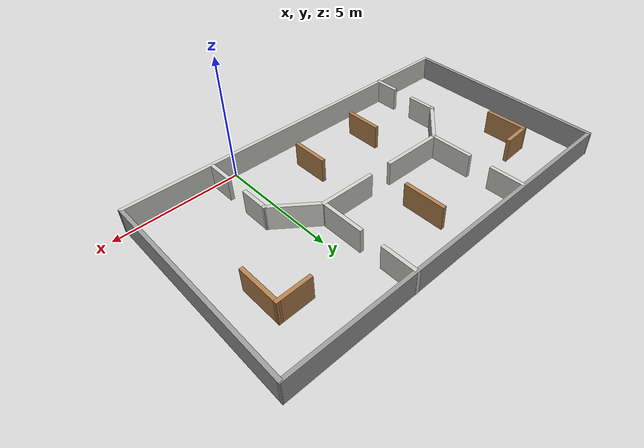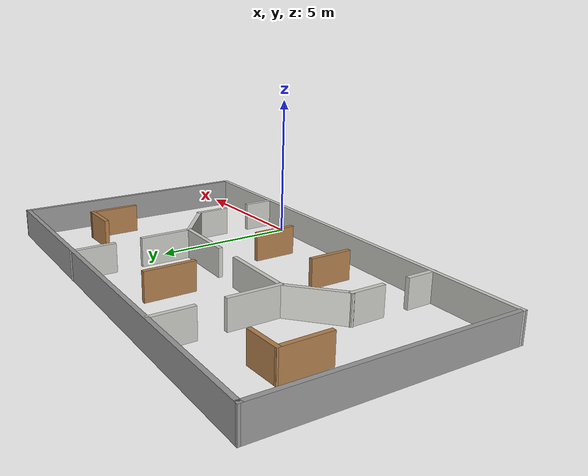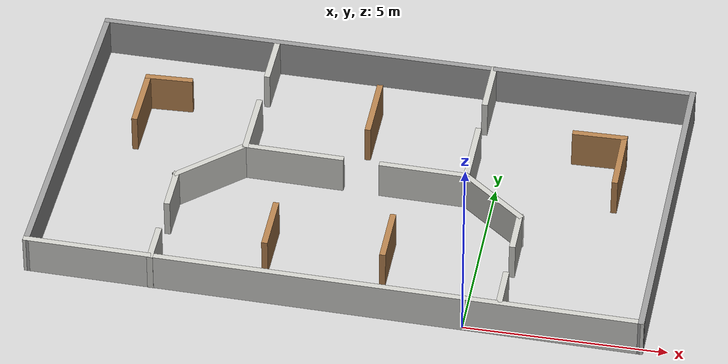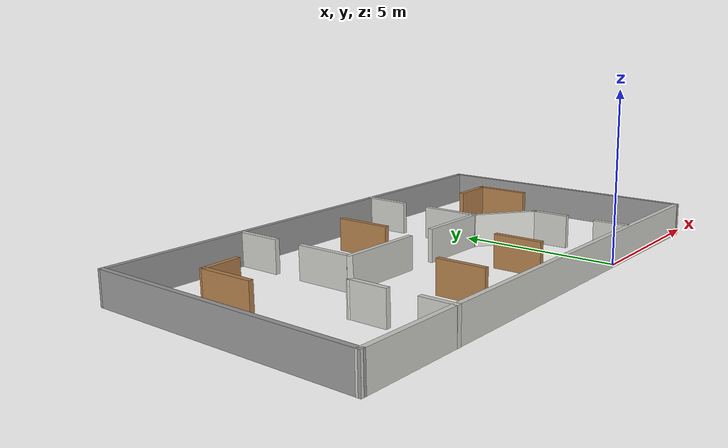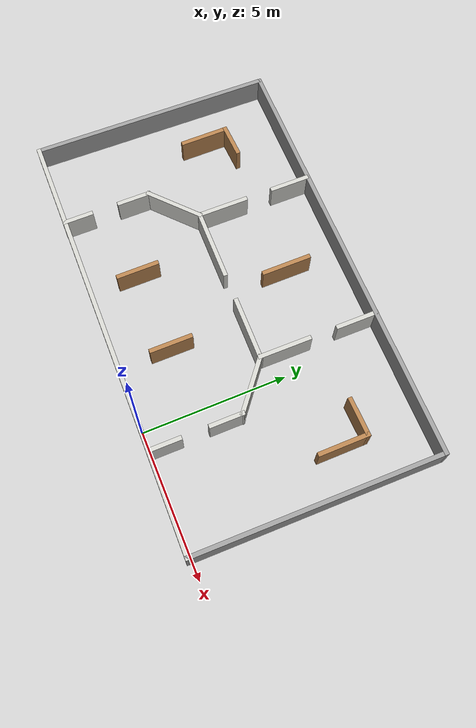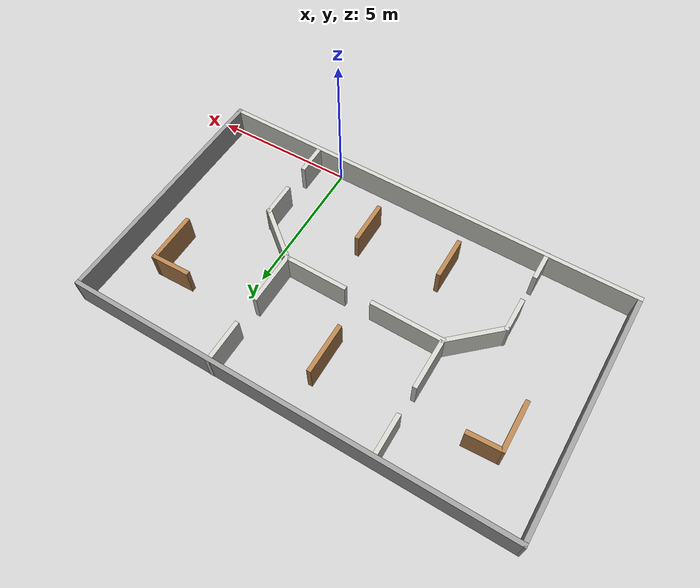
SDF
<?xml version='1.0'?>
<sdf version='1.7'>
  <model name='m2'>
    <pose>-3.18872 4.25007 0 0 -0 0</pose>
    <link name='Wall_0'>
      <collision name='Wall_0_Collision'>
        <geometry>
          <box>
            <size>15.3022 0.15 1</size>
          </box>
        </geometry>
        <pose>0 0 0.5 0 -0 0</pose>
      </collision>
      <visual name='Wall_0_Visual'>
        <pose>0 0 0.5 0 -0 0</pose>
        <geometry>
          <box>
            <size>15.3022 0.15 1</size>
          </box>
        </geometry>
        <material>
          <script>
            <uri>file://media/materials/scripts/gazebo.material</uri>
            <name>Gazebo/CeilingTiled</name>
          </script>
          <ambient>0.180392 0.203922 0.211765 1</ambient>
        </material>
        <meta>
          <layer>0</layer>
        </meta>
      </visual>
      <pose>-0.044283 -4.22507 0 0 -0 -0.01716</pose>
    </link>
    <link name='Wall_1'>
      <collision name='Wall_1_Collision'>
        <geometry>
          <box>
            <size>8.67935 0.15 1</size>
          </box>
        </geometry>
        <pose>0 0 0.5 0 -0 0</pose>
      </collision>
      <visual name='Wall_1_Visual'>
        <pose>0 0 0.5 0 -0 0</pose>
        <geometry>
          <box>
            <size>8.67935 0.15 1</size>
          </box>
        </geometry>
        <material>
          <script>
            <uri>file://media/materials/scripts/gazebo.material</uri>
            <name>Gazebo/Grey</name>
          </script>
          <ambient>0.180392 0.203922 0.211765 1</ambient>
        </material>
        <meta>
          <layer>0</layer>
        </meta>
      </visual>
      <pose>7.57522 -0.090566 0 0 -0 1.56036</pose>
    </link>
    <link name='Wall_10'>
      <collision name='Wall_10_Collision'>
        <geometry>
          <box>
            <size>2.12763 0.15 1</size>
          </box>
        </geometry>
        <pose>0 0 0.5 0 -0 0</pose>
      </collision>
      <visual name='Wall_10_Visual'>
        <pose>0 0 0.5 0 -0 0</pose>
        <geometry>
          <box>
            <size>2.12763 0.15 1</size>
          </box>
        </geometry>
        <material>
          <script>
            <uri>file://media/materials/scripts/gazebo.material</uri>
            <name>Gazebo/CeilingTiled</name>
          </script>
          <ambient>0.756863 0.490196 0.0666667 1</ambient>
        </material>
        <meta>
          <layer>0</layer>
        </meta>
      </visual>
      <pose>3.30422 -0.512566 0 0 -0 -0.685089</pose>
    </link>
    <link name='Wall_11'>
      <pose>4.06972 -2.66807 0 0 -0 -1.5708</pose>
      <visual name='Wall_11_Visual_0'>
        <pose>-0.99366 0 0.5 0 -0 0</pose>
        <geometry>
          <box>
            <size>1.22281 0.15 1</size>
          </box>
        </geometry>
        <material>
          <script>
            <uri>file://media/materials/scripts/gazebo.material</uri>
            <name>Gazebo/CeilingTiled</name>
          </script>
          <ambient>0.756863 0.490196 0.0666667 1</ambient>
        </material>
        <meta>
          <layer>0</layer>
        </meta>
      </visual>
      <collision name='Wall_11_Collision_0'>
        <geometry>
          <box>
            <size>1.22281 0.15 1</size>
          </box>
        </geometry>
        <pose>-0.99366 0 0.5 0 -0 0</pose>
      </collision>
      <visual name='Wall_11_Visual_1'>
        <pose>1.0614 0 0.5 0 -0 0</pose>
        <geometry>
          <box>
            <size>1.08732 0.15 1</size>
          </box>
        </geometry>
        <material>
          <script>
            <uri>file://media/materials/scripts/gazebo.material</uri>
            <name>Gazebo/CeilingTiled</name>
          </script>
          <ambient>0.756863 0.490196 0.0666667 1</ambient>
        </material>
        <meta>
          <layer>0</layer>
        </meta>
      </visual>
      <collision name='Wall_11_Collision_1'>
        <geometry>
          <box>
            <size>1.08732 0.15 1</size>
          </box>
        </geometry>
        <pose>1.0614 0 0.5 0 -0 0</pose>
      </collision>
    </link>
    <link name='Wall_13'>
      <collision name='Wall_13_Collision'>
        <geometry>
          <box>
            <size>2.13524 0.15 1</size>
          </box>
        </geometry>
        <pose>0 0 0.5 0 -0 0</pose>
      </collision>
      <visual name='Wall_13_Visual'>
        <pose>0 0 0.5 0 -0 0</pose>
        <geometry>
          <box>
            <size>2.13524 0.15 1</size>
          </box>
        </geometry>
        <material>
          <script>
            <uri>file://media/materials/scripts/gazebo.material</uri>
            <name>Gazebo/CeilingTiled</name>
          </script>
          <ambient>0.756863 0.490196 0.0666667 1</ambient>
        </material>
        <meta>
          <layer>0</layer>
        </meta>
      </visual>
      <pose>-3.77628 -0.434566 0 0 -0 -2.40429</pose>
    </link>
    <link name='Wall_18'>
      <pose>-4.51628 -2.62957 0 0 -0 1.56752</pose>
      <visual name='Wall_18_Visual_0'>
        <pose>-1.06039 0 0.5 0 -0 0</pose>
        <geometry>
          <box>
            <size>1.08436 0.15 1</size>
          </box>
        </geometry>
        <material>
          <script>
            <uri>file://media/materials/scripts/gazebo.material</uri>
            <name>Gazebo/CeilingTiled</name>
          </script>
          <ambient>0.756863 0.490196 0.0666667 1</ambient>
        </material>
        <meta>
          <layer>0</layer>
        </meta>
      </visual>
      <collision name='Wall_18_Collision_0'>
        <geometry>
          <box>
            <size>1.08436 0.15 1</size>
          </box>
        </geometry>
        <pose>-1.06039 0 0.5 0 -0 0</pose>
      </collision>
      <visual name='Wall_18_Visual_1'>
        <pose>0.992182 0 0.5 0 -0 0</pose>
        <geometry>
          <box>
            <size>1.22077 0.15 1</size>
          </box>
        </geometry>
        <material>
          <script>
            <uri>file://media/materials/scripts/gazebo.material</uri>
            <name>Gazebo/CeilingTiled</name>
          </script>
          <ambient>0.756863 0.490196 0.0666667 1</ambient>
        </material>
        <meta>
          <layer>0</layer>
        </meta>
      </visual>
      <collision name='Wall_18_Collision_1'>
        <geometry>
          <box>
            <size>1.22077 0.15 1</size>
          </box>
        </geometry>
        <pose>0.992182 0 0.5 0 -0 0</pose>
      </collision>
    </link>
    <link name='Wall_2'>
      <collision name='Wall_2_Collision'>
        <geometry>
          <box>
            <size>15.2302 0.15 1</size>
          </box>
        </geometry>
        <pose>0 0 0.5 0 -0 0</pose>
      </collision>
      <visual name='Wall_2_Visual'>
        <pose>0 0 0.5 0 -0 0</pose>
        <geometry>
          <box>
            <size>15.2302 0.15 1</size>
          </box>
        </geometry>
        <material>
          <script>
            <uri>file://media/materials/scripts/gazebo.material</uri>
            <name>Gazebo/Grey</name>
          </script>
          <ambient>0.180392 0.203922 0.211765 1</ambient>
        </material>
        <meta>
          <layer>0</layer>
        </meta>
      </visual>
      <pose>0.080217 4.26443 0 0 -0 3.12959</pose>
    </link>
    <link name='Wall_20'>
      <collision name='Wall_20_Collision'>
        <geometry>
          <box>
            <size>1.5 0.15 1</size>
          </box>
        </geometry>
        <pose>0 0 0.5 0 -0 0</pose>
      </collision>
      <visual name='Wall_20_Visual'>
        <pose>0 0 0.5 0 -0 0</pose>
        <geometry>
          <box>
            <size>1.5 0.15 1</size>
          </box>
        </geometry>
        <material>
          <script>
            <uri>file://media/materials/scripts/gazebo.material</uri>
            <name>Gazebo/Wood</name>
          </script>
          <ambient>0.960784 0.47451 0 1</ambient>
        </material>
        <meta>
          <layer>0</layer>
        </meta>
      </visual>
      <pose>-1.88128 -2.47207 0 0 -0 -1.5708</pose>
    </link>
    <link name='Wall_22'>
      <collision name='Wall_22_Collision'>
        <geometry>
          <box>
            <size>1.5 0.15 1</size>
          </box>
        </geometry>
        <pose>0 0 0.5 0 -0 0</pose>
      </collision>
      <visual name='Wall_22_Visual'>
        <pose>0 0 0.5 0 -0 0</pose>
        <geometry>
          <box>
            <size>1.5 0.15 1</size>
          </box>
        </geometry>
        <material>
          <script>
            <uri>file://media/materials/scripts/gazebo.material</uri>
            <name>Gazebo/Wood</name>
          </script>
          <ambient>0.960784 0.47451 0 1</ambient>
        </material>
        <meta>
          <layer>0</layer>
        </meta>
      </visual>
      <pose>1.01872 -2.38207 0 0 -0 -1.5708</pose>
    </link>
    <link name='Wall_24'>
      <collision name='Wall_24_Collision'>
        <geometry>
          <box>
            <size>1.75 0.15 1</size>
          </box>
        </geometry>
        <pose>0 0 0.5 0 -0 0</pose>
      </collision>
      <visual name='Wall_24_Visual'>
        <pose>0 0 0.5 0 -0 0</pose>
        <geometry>
          <box>
            <size>1.75 0.15 1</size>
          </box>
        </geometry>
        <material>
          <script>
            <uri>file://media/materials/scripts/gazebo.material</uri>
            <name>Gazebo/Wood</name>
          </script>
          <ambient>0.960784 0.47451 0 1</ambient>
        </material>
        <meta>
          <layer>0</layer>
        </meta>
      </visual>
      <pose>-0.161283 2.22293 0 0 -0 -1.5708</pose>
    </link>
    <link name='Wall_26'>
      <collision name='Wall_26_Collision'>
        <geometry>
          <box>
            <size>1.21 0.15 1</size>
          </box>
        </geometry>
        <pose>0 0 0.5 0 -0 0</pose>
      </collision>
      <visual name='Wall_26_Visual'>
        <pose>0 0 0.5 0 -0 0</pose>
        <geometry>
          <box>
            <size>1.21 0.15 1</size>
          </box>
        </geometry>
        <material>
          <script>
            <uri>file://media/materials/scripts/gazebo.material</uri>
            <name>Gazebo/Wood</name>
          </script>
          <ambient>0.960784 0.47451 0 1</ambient>
        </material>
        <meta>
          <layer>0</layer>
        </meta>
      </visual>
      <pose>-5.44128 2.40293 0 0 -0 -3.10387</pose>
    </link>
    <link name='Wall_27'>
      <collision name='Wall_27_Collision'>
        <geometry>
          <box>
            <size>1.75 0.15 1</size>
          </box>
        </geometry>
        <pose>0 0 0.5 0 -0 0</pose>
      </collision>
      <visual name='Wall_27_Visual'>
        <pose>0 0 0.5 0 -0 0</pose>
        <geometry>
          <box>
            <size>1.75 0.15 1</size>
          </box>
        </geometry>
        <material>
          <script>
            <uri>file://media/materials/scripts/gazebo.material</uri>
            <name>Gazebo/Wood</name>
          </script>
          <ambient>0.996078 0.47451 0.0196078 1</ambient>
        </material>
        <meta>
          <layer>0</layer>
        </meta>
      </visual>
      <pose>-5.97128 1.58293 0 0 -0 -1.5708</pose>
    </link>
    <link name='Wall_29'>
      <collision name='Wall_29_Collision'>
        <geometry>
          <box>
            <size>1.38065 0.15 1</size>
          </box>
        </geometry>
        <pose>0 0 0.5 0 -0 0</pose>
      </collision>
      <visual name='Wall_29_Visual'>
        <pose>0 0 0.5 0 -0 0</pose>
        <geometry>
          <box>
            <size>1.38065 0.15 1</size>
          </box>
        </geometry>
        <material>
          <script>
            <uri>file://media/materials/scripts/gazebo.material</uri>
            <name>Gazebo/Wood</name>
          </script>
          <ambient>0.960784 0.47451 0 1</ambient>
        </material>
        <meta>
          <layer>0</layer>
        </meta>
      </visual>
      <pose>5.56372 2.19293 0 0 -0 0.016259</pose>
    </link>
    <link name='Wall_30'>
      <collision name='Wall_30_Collision'>
        <geometry>
          <box>
            <size>1.78976 0.15 1</size>
          </box>
        </geometry>
        <pose>0 0 0.5 0 -0 0</pose>
      </collision>
      <visual name='Wall_30_Visual'>
        <pose>0 0 0.5 0 -0 0</pose>
        <geometry>
          <box>
            <size>1.78976 0.15 1</size>
          </box>
        </geometry>
        <material>
          <script>
            <uri>file://media/materials/scripts/gazebo.material</uri>
            <name>Gazebo/Wood</name>
          </script>
          <ambient>0.960784 0.47451 0 1</ambient>
        </material>
        <meta>
          <layer>0</layer>
        </meta>
      </visual>
      <pose>6.17872 1.38293 0 0 -0 -1.5708</pose>
    </link>
    <link name='Wall_4'>
      <collision name='Wall_4_Collision'>
        <geometry>
          <box>
            <size>8.60151 0.15 1</size>
          </box>
        </geometry>
        <pose>0 0 0.5 0 -0 0</pose>
      </collision>
      <visual name='Wall_4_Visual'>
        <pose>0 0 0.5 0 -0 0</pose>
        <geometry>
          <box>
            <size>8.60151 0.15 1</size>
          </box>
        </geometry>
        <material>
          <script>
            <uri>file://media/materials/scripts/gazebo.material</uri>
            <name>Gazebo/Grey</name>
          </script>
          <ambient>0.180392 0.203922 0.211765 1</ambient>
        </material>
        <meta>
          <layer>0</layer>
        </meta>
      </visual>
      <pose>-7.53928 0.129934 0 0 -0 -1.58973</pose>
    </link>
    <link name='Wall_6'>
      <pose>-3.03128 2.23793 0 0 -0 -1.57578</pose>
      <visual name='Wall_6_Visual_0'>
        <pose>-1.36769 0 0.5 0 -0 0</pose>
        <geometry>
          <box>
            <size>1.42468 0.15 1</size>
          </box>
        </geometry>
        <material>
          <script>
            <uri>file://media/materials/scripts/gazebo.material</uri>
            <name>Gazebo/CeilingTiled</name>
          </script>
          <ambient>0.756863 0.490196 0.0666667 1</ambient>
        </material>
        <meta>
          <layer>0</layer>
        </meta>
      </visual>
      <collision name='Wall_6_Collision_0'>
        <geometry>
          <box>
            <size>1.42468 0.15 1</size>
          </box>
        </geometry>
        <pose>-1.36769 0 0.5 0 -0 0</pose>
      </collision>
      <visual name='Wall_6_Visual_1'>
        <pose>1.16234 0 0.5 0 -0 0</pose>
        <geometry>
          <box>
            <size>1.83537 0.15 1</size>
          </box>
        </geometry>
        <material>
          <script>
            <uri>file://media/materials/scripts/gazebo.material</uri>
            <name>Gazebo/CeilingTiled</name>
          </script>
          <ambient>0.756863 0.490196 0.0666667 1</ambient>
        </material>
        <meta>
          <layer>0</layer>
        </meta>
      </visual>
      <collision name='Wall_6_Collision_1'>
        <geometry>
          <box>
            <size>1.83537 0.15 1</size>
          </box>
        </geometry>
        <pose>1.16234 0 0.5 0 -0 0</pose>
      </collision>
    </link>
    <link name='Wall_7'>
      <pose>-0.251283 0.172934 0 0 -0 -0.021502</pose>
      <visual name='Wall_7_Visual_0'>
        <pose>-1.58257 0 0.5 0 -0 0</pose>
        <geometry>
          <box>
            <size>2.56658 0.15 1</size>
          </box>
        </geometry>
        <material>
          <script>
            <uri>file://media/materials/scripts/gazebo.material</uri>
            <name>Gazebo/CeilingTiled</name>
          </script>
          <ambient>0.756863 0.490196 0.0666667 1</ambient>
        </material>
        <meta>
          <layer>0</layer>
        </meta>
      </visual>
      <collision name='Wall_7_Collision_0'>
        <geometry>
          <box>
            <size>2.56658 0.15 1</size>
          </box>
        </geometry>
        <pose>-1.58257 0 0.5 0 -0 0</pose>
      </collision>
      <visual name='Wall_7_Visual_1'>
        <pose>1.73329 0 0.5 0 -0 0</pose>
        <geometry>
          <box>
            <size>2.26514 0.15 1</size>
          </box>
        </geometry>
        <material>
          <script>
            <uri>file://media/materials/scripts/gazebo.material</uri>
            <name>Gazebo/CeilingTiled</name>
          </script>
          <ambient>0.756863 0.490196 0.0666667 1</ambient>
        </material>
        <meta>
          <layer>0</layer>
        </meta>
      </visual>
      <collision name='Wall_7_Collision_1'>
        <geometry>
          <box>
            <size>2.26514 0.15 1</size>
          </box>
        </geometry>
        <pose>1.73329 0 0.5 0 -0 0</pose>
      </collision>
    </link>
    <link name='Wall_8'>
      <pose>2.54872 2.17793 0 0 -0 1.56595</pose>
      <visual name='Wall_8_Visual_0'>
        <pose>-1.20302 0 0.5 0 -0 0</pose>
        <geometry>
          <box>
            <size>1.874 0.15 1</size>
          </box>
        </geometry>
        <material>
          <script>
            <uri>file://media/materials/scripts/gazebo.material</uri>
            <name>Gazebo/CeilingTiled</name>
          </script>
          <ambient>0.756863 0.490196 0.0666667 1</ambient>
        </material>
        <meta>
          <layer>0</layer>
        </meta>
      </visual>
      <collision name='Wall_8_Collision_0'>
        <geometry>
          <box>
            <size>1.874 0.15 1</size>
          </box>
        </geometry>
        <pose>-1.20302 0 0.5 0 -0 0</pose>
      </collision>
      <visual name='Wall_8_Visual_1'>
        <pose>1.387 0 0.5 0 -0 0</pose>
        <geometry>
          <box>
            <size>1.50604 0.15 1</size>
          </box>
        </geometry>
        <material>
          <script>
            <uri>file://media/materials/scripts/gazebo.material</uri>
            <name>Gazebo/CeilingTiled</name>
          </script>
          <ambient>0.756863 0.490196 0.0666667 1</ambient>
        </material>
        <meta>
          <layer>0</layer>
        </meta>
      </visual>
      <collision name='Wall_8_Collision_1'>
        <geometry>
          <box>
            <size>1.50604 0.15 1</size>
          </box>
        </geometry>
        <pose>1.387 0 0.5 0 -0 0</pose>
      </collision>
    </link>
    <static>1</static>
  </model>
</sdf>
